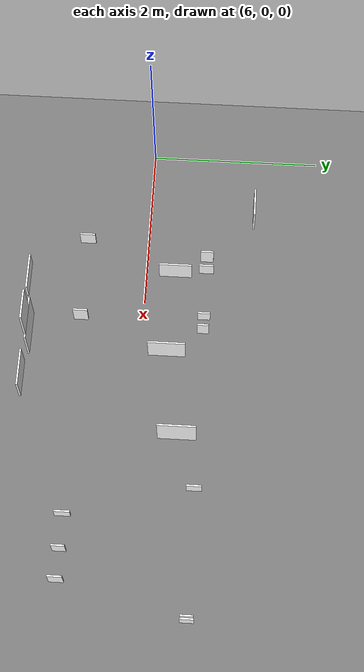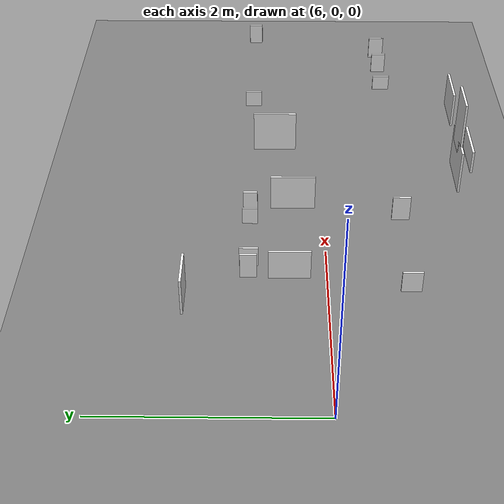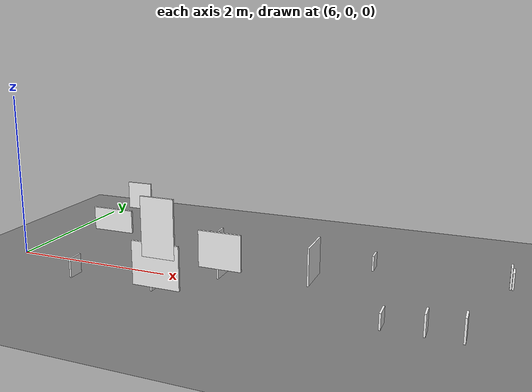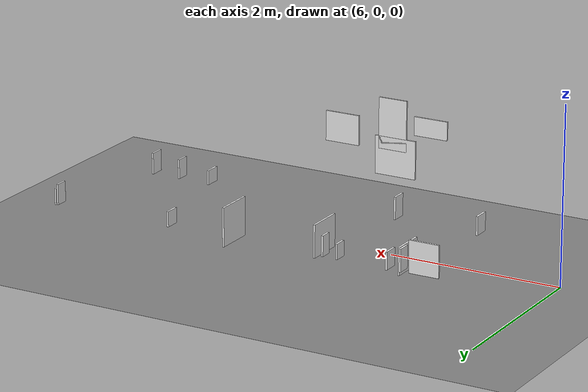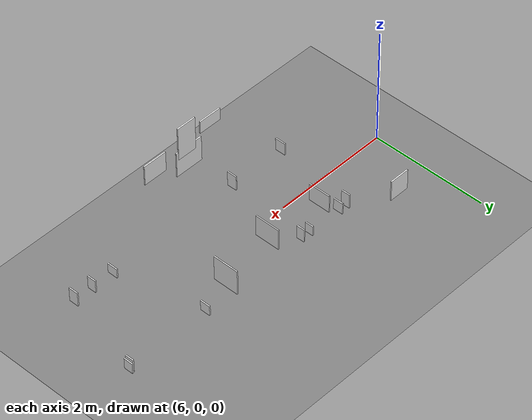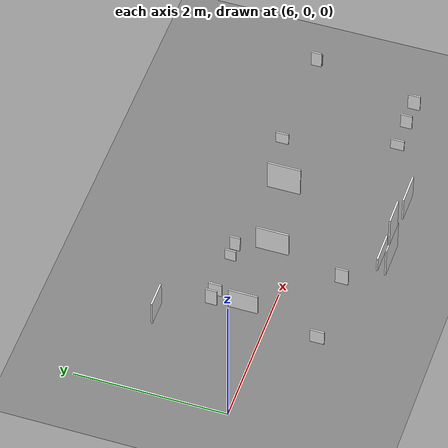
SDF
<sdf version="1.9">
 <world name="tunnel_world">
  <model name="ground_plane">
   <static>true</static>
   <link name="ground">
    <collision name="ground_collision">
     <geometry><plane><normal>0 0 1</normal><size>100 100</size></plane></geometry>
    </collision>
    <visual name="ground_visual">
     <geometry><plane><normal>0 0 1</normal><size>100 100</size></plane></geometry>
     <material>
      <diffuse>0.50 0.50 0.50 1</diffuse>
      <emissive>0.08 0.08 0.08 1</emissive>
      <ambient>0.5 0.5 0.5</ambient>
     </material>
    </visual>
   </link>
  </model>
  <model name="defect_crack_05">
   <static>true</static>
   <pose>6.953 1.25 0.543 0 0 0</pose>
   <link name="link">
    <visual name="visual">
     <laser_retro>500</laser_retro>
     <geometry><box><size>0.345 0.02 0.36</size></box></geometry>
     <material>
      <ambient>1 1 1 1</ambient>
      <diffuse>1 1 1 1</diffuse>
      <emissive>0.05 0.05 0.05 1</emissive>
      <specular>0.05 0.05 0.05 1</specular>
      <pbr>
       <metal>
        <albedo_map>file:///home/ylf/workspace/inspection_robot/data_gen/textures/crack_5.png</albedo_map>
        <metalness>0.0</metalness>
        <roughness>0.9</roughness>
       </metal>
      </pbr>
     </material>
    </visual>
    <collision name="collision"><geometry><box><size>0.345 0.02 0.36</size></box></geometry></collision>
   </link>
  </model>
  <model name="defect_crack_06">
   <static>true</static>
   <pose>8.198 -1.25 1.043 0 0 0</pose>
   <link name="link">
    <visual name="visual">
     <laser_retro>500</laser_retro>
     <geometry><box><size>0.406 0.02 0.216</size></box></geometry>
     <material>
      <ambient>1 1 1 1</ambient>
      <diffuse>1 1 1 1</diffuse>
      <emissive>0.05 0.05 0.05 1</emissive>
      <specular>0.05 0.05 0.05 1</specular>
      <pbr>
       <metal>
        <albedo_map>file:///home/ylf/workspace/inspection_robot/data_gen/textures/crack_1.png</albedo_map>
        <metalness>0.0</metalness>
        <roughness>0.9</roughness>
       </metal>
      </pbr>
     </material>
    </visual>
    <collision name="collision"><geometry><box><size>0.406 0.02 0.216</size></box></geometry></collision>
   </link>
  </model>
  <model name="defect_equip_intrusion_03">
   <static>true</static>
   <pose>9.68 0.484 0.233 0 0 0</pose>
   <link name="link">
    <visual name="visual">
     <laser_retro>900</laser_retro>
     <geometry><box><size>0.02 0.443 0.446</size></box></geometry>
     <material>
      <ambient>1 1 1 1</ambient>
      <diffuse>1 1 1 1</diffuse>
      <emissive>0.05 0.05 0.05 1</emissive>
      <specular>0.05 0.05 0.05 1</specular>
      <pbr>
       <metal>
        <albedo_map>file:///home/ylf/workspace/inspection_robot/data_gen/textures/equip_intrusion_2.png</albedo_map>
        <metalness>0.0</metalness>
        <roughness>0.9</roughness>
       </metal>
      </pbr>
     </material>
    </visual>
   </link>
  </model>
  <model name="defect_equip_intrusion_04">
   <static>true</static>
   <pose>7.625 0.347 0.167 0 0 0</pose>
   <link name="link">
    <visual name="visual">
     <laser_retro>900</laser_retro>
     <geometry><box><size>0.02 0.386 0.313</size></box></geometry>
     <material>
      <ambient>1 1 1 1</ambient>
      <diffuse>1 1 1 1</diffuse>
      <emissive>0.05 0.05 0.05 1</emissive>
      <specular>0.05 0.05 0.05 1</specular>
      <pbr>
       <metal>
        <albedo_map>file:///home/ylf/workspace/inspection_robot/data_gen/textures/equip_intrusion_1.png</albedo_map>
        <metalness>0.0</metalness>
        <roughness>0.9</roughness>
       </metal>
      </pbr>
     </material>
    </visual>
   </link>
  </model>
  <model name="defect_equip_intrusion_06">
   <static>true</static>
   <pose>8.658 0.305 0.198 0 0 0</pose>
   <link name="link">
    <visual name="visual">
     <laser_retro>900</laser_retro>
     <geometry><box><size>0.02 0.435 0.376</size></box></geometry>
     <material>
      <ambient>1 1 1 1</ambient>
      <diffuse>1 1 1 1</diffuse>
      <emissive>0.05 0.05 0.05 1</emissive>
      <specular>0.05 0.05 0.05 1</specular>
      <pbr>
       <metal>
        <albedo_map>file:///home/ylf/workspace/inspection_robot/data_gen/textures/equip_intrusion_4.png</albedo_map>
        <metalness>0.0</metalness>
        <roughness>0.9</roughness>
       </metal>
      </pbr>
     </material>
    </visual>
   </link>
  </model>
  <model name="defect_leakage_06">
   <static>true</static>
   <pose>8.671 -1.25 1.014 0 0 0</pose>
   <link name="link">
    <visual name="visual">
     <laser_retro>300</laser_retro>
     <geometry><box><size>0.345 0.02 0.591</size></box></geometry>
     <material>
      <ambient>1 1 1 1</ambient>
      <diffuse>1 1 1 1</diffuse>
      <emissive>0.05 0.05 0.05 1</emissive>
      <specular>0.05 0.05 0.05 1</specular>
      <pbr>
       <metal>
        <albedo_map>file:///home/ylf/workspace/inspection_robot/data_gen/textures/leakage_1.png</albedo_map>
        <metalness>0.0</metalness>
        <roughness>0.9</roughness>
       </metal>
      </pbr>
     </material>
    </visual>
    <collision name="collision"><geometry><box><size>0.345 0.02 0.591</size></box></geometry></collision>
   </link>
  </model>
  <model name="defect_leakage_08">
   <static>true</static>
   <pose>9.305 -1.25 0.876 0 0 0</pose>
   <link name="link">
    <visual name="visual">
     <laser_retro>300</laser_retro>
     <geometry><box><size>0.418 0.02 0.347</size></box></geometry>
     <material>
      <ambient>1 1 1 1</ambient>
      <diffuse>1 1 1 1</diffuse>
      <emissive>0.05 0.05 0.05 1</emissive>
      <specular>0.05 0.05 0.05 1</specular>
      <pbr>
       <metal>
        <albedo_map>file:///home/ylf/workspace/inspection_robot/data_gen/textures/leakage_4.png</albedo_map>
        <metalness>0.0</metalness>
        <roughness>0.9</roughness>
       </metal>
      </pbr>
     </material>
    </visual>
    <collision name="collision"><geometry><box><size>0.418 0.02 0.347</size></box></geometry></collision>
   </link>
  </model>
  <model name="defect_rail_fastener_broken_01">
   <static>true</static>
   <pose>8.308 -0.717 0.285 0 0 0</pose>
   <link name="link">
    <visual name="visual">
     <laser_retro>450</laser_retro>
     <geometry><box><size>0.02 0.17 0.26</size></box></geometry>
     <material>
      <ambient>1 1 1 1</ambient>
      <diffuse>1 1 1 1</diffuse>
      <emissive>0.05 0.05 0.05 1</emissive>
      <specular>0.05 0.05 0.05 1</specular>
      <pbr>
       <metal>
        <albedo_map>file:///home/ylf/workspace/inspection_robot/data_gen/textures/rail_fastener_broken_3.png</albedo_map>
        <metalness>0.0</metalness>
        <roughness>0.9</roughness>
       </metal>
      </pbr>
     </material>
    </visual>
   </link>
  </model>
  <model name="defect_rail_fastener_broken_07">
   <static>true</static>
   <pose>7.477 0.717 0.284 0 0 0</pose>
   <link name="link">
    <visual name="visual">
     <laser_retro>450</laser_retro>
     <geometry><box><size>0.02 0.152 0.258</size></box></geometry>
     <material>
      <ambient>1 1 1 1</ambient>
      <diffuse>1 1 1 1</diffuse>
      <emissive>0.05 0.05 0.05 1</emissive>
      <specular>0.05 0.05 0.05 1</specular>
      <pbr>
       <metal>
        <albedo_map>file:///home/ylf/workspace/inspection_robot/data_gen/textures/rail_fastener_broken_1.png</albedo_map>
        <metalness>0.0</metalness>
        <roughness>0.9</roughness>
       </metal>
      </pbr>
     </material>
    </visual>
   </link>
  </model>
  <model name="defect_rail_fastener_loose_01">
   <static>true</static>
   <pose>8.411 0.717 0.272 0 0 0</pose>
   <link name="link">
    <visual name="visual">
     <laser_retro>380</laser_retro>
     <geometry><box><size>0.02 0.135 0.234</size></box></geometry>
     <material>
      <ambient>1 1 1 1</ambient>
      <diffuse>1 1 1 1</diffuse>
      <emissive>0.05 0.05 0.05 1</emissive>
      <specular>0.05 0.05 0.05 1</specular>
      <pbr>
       <metal>
        <albedo_map>file:///home/ylf/workspace/inspection_robot/data_gen/textures/rail_fastener_loose_5.png</albedo_map>
        <metalness>0.0</metalness>
        <roughness>0.9</roughness>
       </metal>
      </pbr>
     </material>
    </visual>
   </link>
  </model>
  <model name="defect_rail_fastener_loose_03">
   <static>true</static>
   <pose>11.428 -0.717 0.28 0 0 0</pose>
   <link name="link">
    <visual name="visual">
     <laser_retro>380</laser_retro>
     <geometry><box><size>0.02 0.165 0.249</size></box></geometry>
     <material>
      <ambient>1 1 1 1</ambient>
      <diffuse>1 1 1 1</diffuse>
      <emissive>0.05 0.05 0.05 1</emissive>
      <specular>0.05 0.05 0.05 1</specular>
      <pbr>
       <metal>
        <albedo_map>file:///home/ylf/workspace/inspection_robot/data_gen/textures/rail_fastener_loose_5.png</albedo_map>
        <metalness>0.0</metalness>
        <roughness>0.9</roughness>
       </metal>
      </pbr>
     </material>
    </visual>
   </link>
  </model>
  <model name="defect_rail_fastener_loose_05">
   <static>true</static>
   <pose>10.324 0.717 0.243 0 0 0</pose>
   <link name="link">
    <visual name="visual">
     <laser_retro>380</laser_retro>
     <geometry><box><size>0.02 0.172 0.176</size></box></geometry>
     <material>
      <ambient>1 1 1 1</ambient>
      <diffuse>1 1 1 1</diffuse>
      <emissive>0.05 0.05 0.05 1</emissive>
      <specular>0.05 0.05 0.05 1</specular>
      <pbr>
       <metal>
        <albedo_map>file:///home/ylf/workspace/inspection_robot/data_gen/textures/rail_fastener_loose_2.png</albedo_map>
        <metalness>0.0</metalness>
        <roughness>0.9</roughness>
       </metal>
      </pbr>
     </material>
    </visual>
   </link>
  </model>
  <model name="defect_rail_fastener_loose_06">
   <static>true</static>
   <pose>7.301 -0.717 0.263 0 0 0</pose>
   <link name="link">
    <visual name="visual">
     <laser_retro>380</laser_retro>
     <geometry><box><size>0.02 0.183 0.217</size></box></geometry>
     <material>
      <ambient>1 1 1 1</ambient>
      <diffuse>1 1 1 1</diffuse>
      <emissive>0.05 0.05 0.05 1</emissive>
      <specular>0.05 0.05 0.05 1</specular>
      <pbr>
       <metal>
        <albedo_map>file:///home/ylf/workspace/inspection_robot/data_gen/textures/rail_fastener_loose_4.png</albedo_map>
        <metalness>0.0</metalness>
        <roughness>0.9</roughness>
       </metal>
      </pbr>
     </material>
    </visual>
   </link>
  </model>
  <model name="defect_rail_fastener_loose_07">
   <static>true</static>
   <pose>7.632 0.717 0.256 0 0 0</pose>
   <link name="link">
    <visual name="visual">
     <laser_retro>380</laser_retro>
     <geometry><box><size>0.02 0.172 0.202</size></box></geometry>
     <material>
      <ambient>1 1 1 1</ambient>
      <diffuse>1 1 1 1</diffuse>
      <emissive>0.05 0.05 0.05 1</emissive>
      <specular>0.05 0.05 0.05 1</specular>
      <pbr>
       <metal>
        <albedo_map>file:///home/ylf/workspace/inspection_robot/data_gen/textures/rail_fastener_loose_1.png</albedo_map>
        <metalness>0.0</metalness>
        <roughness>0.9</roughness>
       </metal>
      </pbr>
     </material>
    </visual>
   </link>
  </model>
  <model name="defect_rail_fastener_loose_08">
   <static>true</static>
   <pose>8.235 0.717 0.243 0 0 0</pose>
   <link name="link">
    <visual name="visual">
     <laser_retro>380</laser_retro>
     <geometry><box><size>0.02 0.146 0.176</size></box></geometry>
     <material>
      <ambient>1 1 1 1</ambient>
      <diffuse>1 1 1 1</diffuse>
      <emissive>0.05 0.05 0.05 1</emissive>
      <specular>0.05 0.05 0.05 1</specular>
      <pbr>
       <metal>
        <albedo_map>file:///home/ylf/workspace/inspection_robot/data_gen/textures/rail_fastener_loose_5.png</albedo_map>
        <metalness>0.0</metalness>
        <roughness>0.9</roughness>
       </metal>
      </pbr>
     </material>
    </visual>
   </link>
  </model>
  <model name="defect_rail_fastener_missing_02">
   <static>true</static>
   <pose>10.688 -0.717 0.239 0 0 0</pose>
   <link name="link">
    <visual name="visual">
     <laser_retro>520</laser_retro>
     <geometry><box><size>0.02 0.18 0.167</size></box></geometry>
     <material>
      <ambient>1 1 1 1</ambient>
      <diffuse>1 1 1 1</diffuse>
      <emissive>0.05 0.05 0.05 1</emissive>
      <specular>0.05 0.05 0.05 1</specular>
      <pbr>
       <metal>
        <albedo_map>file:///home/ylf/workspace/inspection_robot/data_gen/textures/rail_fastener_missing_1.png</albedo_map>
        <metalness>0.0</metalness>
        <roughness>0.9</roughness>
       </metal>
      </pbr>
     </material>
    </visual>
   </link>
  </model>
  <model name="defect_rail_fastener_missing_04">
   <static>true</static>
   <pose>11.791 0.717 0.248 0 0 0</pose>
   <link name="link">
    <visual name="visual">
     <laser_retro>520</laser_retro>
     <geometry><box><size>0.02 0.153 0.186</size></box></geometry>
     <material>
      <ambient>1 1 1 1</ambient>
      <diffuse>1 1 1 1</diffuse>
      <emissive>0.05 0.05 0.05 1</emissive>
      <specular>0.05 0.05 0.05 1</specular>
      <pbr>
       <metal>
        <albedo_map>file:///home/ylf/workspace/inspection_robot/data_gen/textures/rail_fastener_missing_4.png</albedo_map>
        <metalness>0.0</metalness>
        <roughness>0.9</roughness>
       </metal>
      </pbr>
     </material>
    </visual>
   </link>
  </model>
  <model name="defect_rail_fastener_missing_05">
   <static>true</static>
   <pose>11.768 0.717 0.273 0 0 0</pose>
   <link name="link">
    <visual name="visual">
     <laser_retro>520</laser_retro>
     <geometry><box><size>0.02 0.142 0.237</size></box></geometry>
     <material>
      <ambient>1 1 1 1</ambient>
      <diffuse>1 1 1 1</diffuse>
      <emissive>0.05 0.05 0.05 1</emissive>
      <specular>0.05 0.05 0.05 1</specular>
      <pbr>
       <metal>
        <albedo_map>file:///home/ylf/workspace/inspection_robot/data_gen/textures/rail_fastener_missing_2.png</albedo_map>
        <metalness>0.0</metalness>
        <roughness>0.9</roughness>
       </metal>
      </pbr>
     </material>
    </visual>
   </link>
  </model>
  <model name="defect_rail_fastener_missing_08">
   <static>true</static>
   <pose>11.085 -0.717 0.268 0 0 0</pose>
   <link name="link">
    <visual name="visual">
     <laser_retro>520</laser_retro>
     <geometry><box><size>0.02 0.153 0.226</size></box></geometry>
     <material>
      <ambient>1 1 1 1</ambient>
      <diffuse>1 1 1 1</diffuse>
      <emissive>0.05 0.05 0.05 1</emissive>
      <specular>0.05 0.05 0.05 1</specular>
      <pbr>
       <metal>
        <albedo_map>file:///home/ylf/workspace/inspection_robot/data_gen/textures/rail_fastener_missing_2.png</albedo_map>
        <metalness>0.0</metalness>
        <roughness>0.9</roughness>
       </metal>
      </pbr>
     </material>
    </visual>
   </link>
  </model>
  <model name="defect_spalling_08">
   <static>true</static>
   <pose>8.636 -1.25 0.641 0 0 0</pose>
   <link name="link">
    <visual name="visual">
     <laser_retro>700</laser_retro>
     <geometry><box><size>0.502 0.02 0.444</size></box></geometry>
     <material>
      <ambient>1 1 1 1</ambient>
      <diffuse>1 1 1 1</diffuse>
      <emissive>0.05 0.05 0.05 1</emissive>
      <specular>0.05 0.05 0.05 1</specular>
      <pbr>
       <metal>
        <albedo_map>file:///home/ylf/workspace/inspection_robot/data_gen/textures/spalling_4.png</albedo_map>
        <metalness>0.0</metalness>
        <roughness>0.9</roughness>
       </metal>
      </pbr>
     </material>
    </visual>
    <collision name="collision"><geometry><box><size>0.502 0.02 0.444</size></box></geometry></collision>
   </link>
  </model>
 </world>
</sdf>
